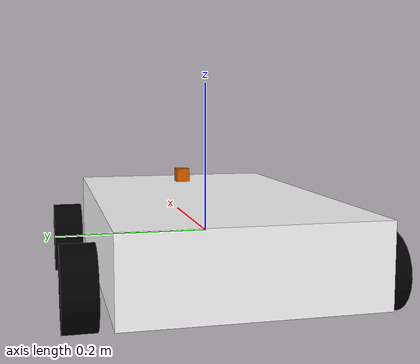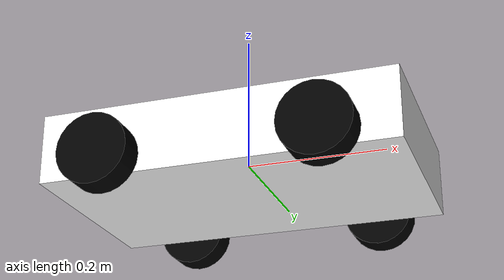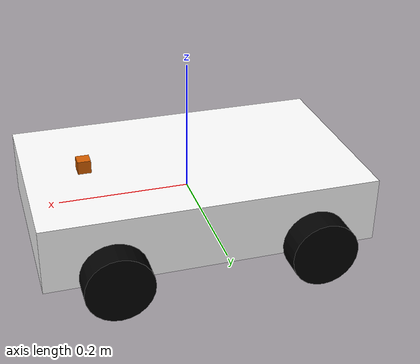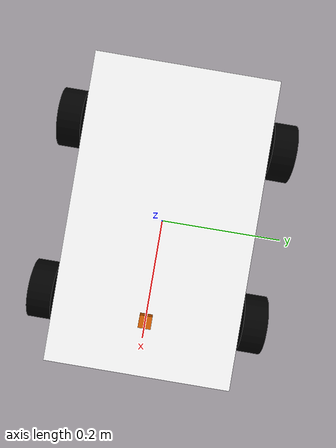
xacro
<?xml version="1.0"?>
<robot xmlns:xacro="http://www.ros.org/wiki/xacro" name="dream_car">
    <material name="white">
        <color rgba="1 1 1 1"/>
    </material>
    <material name="black">
        <color rgba="0 0 0 1"/>
    </material>

    <link name="base_link">
        <visual>
            <geometry>
                <box size="0.5 0.3 0.1"/>
            </geometry>
            <material name="white"/>
        </visual>
        <collision>
            <geometry>
                <box size="0.5 0.3 0.1"/>
            </geometry>
        </collision>
        <inertial>
            <mass value="2"/>
            <inertia ixx="0.1" ixy="0.0" ixz="0.0" iyy="0.1" iyz="0.0" izz="0.1"/>
        </inertial>
    </link>

    <link name="left_front_wheel">
        <visual>
            <origin rpy="1.5707 0 0"/>
            <geometry>
                <cylinder radius="0.05" length="0.04"/>
            </geometry>
            <material name="black"/>
        </visual>
        <collision>
            <origin rpy="1.5707 0 0"/>
            <geometry>
                <cylinder radius="0.05" length="0.04"/>
            </geometry>
        </collision>
    </link>

    <link name="left_back_wheel">
        <visual>
            <origin rpy="1.5707 0 0"/>
            <geometry>
                <cylinder radius="0.05" length="0.04"/>
            </geometry>
            <material name="black"/>
        </visual>
        <collision>
            <origin rpy="1.5707 0 0"/>
            <geometry>
                <cylinder radius="0.05" length="0.04"/>
            </geometry>
        </collision>
    </link>

    <link name="right_front_wheel">
        <visual>
            <origin rpy="1.5707 0 0"/>
            <geometry>
                <cylinder radius="0.05" length="0.04"/>
            </geometry>
            <material name="black"/>
        </visual>
        <collision>
            <origin rpy="1.5707 0 0"/>
            <geometry>
                <cylinder radius="0.05" length="0.04"/>
            </geometry>
        </collision>
    </link>

    <link name="right_back_wheel">
        <visual>
            <origin rpy="1.5707 0 0"/>
            <geometry>
                <cylinder radius="0.05" length="0.04"/>
            </geometry>
            <material name="black"/>
        </visual>
        <collision>
            <origin rpy="1.5707 0 0"/>
            <geometry>
                <cylinder radius="0.05" length="0.04"/>
            </geometry>
        </collision>
    </link>

    <link name="box">
        <visual>
            <geometry>
                <box size="0.02 0.02 0.02"/>
            </geometry>
        </visual>
        <collision>
            <geometry>
                <box size="0.02 0.02 0.02"/>
            </geometry>
        </collision>
    </link>

    <joint name="left_front_wheel_joint" type="continuous">
        <origin xyz="0.15 0.18 -0.03"/>
        <parent link="base_link"/>
        <child link="left_front_wheel"/>
        <axis xyz="0 1 0"/>
    </joint>

    <joint name="left_back_wheel_joint" type="continuous">
        <origin xyz="-0.15 0.18 -0.03"/>
        <parent link="base_link"/>
        <child link="left_back_wheel"/>
        <axis xyz="0 1 0"/>
    </joint>

    <joint name="right_front_wheel_joint" type="continuous">
        <origin xyz="0.15 -0.18 -0.03"/>
        <parent link="base_link"/>
        <child link="right_front_wheel"/>
        <axis xyz="0 1 0"/>
    </joint>

    <joint name="right_back_wheel_joint" type="continuous">
        <origin xyz="-0.15 -0.18 -0.03"/>
        <parent link="base_link"/>
        <child link="right_back_wheel"/>
        <axis xyz="0 1 0"/>
    </joint>

    <joint name="box_joint " type="fixed">
        <origin xyz="0.16 0.0 0.06"/>
        <parent link="base_link"/>
        <child link="box"/>
    </joint>

    <gazebo>
        <plugin name="gazebo_ros_control" filename="libgazebo_ros_control.so">
            <robotNamespace>/</robotNamespace>
        </plugin>
    </gazebo>

</robot>
